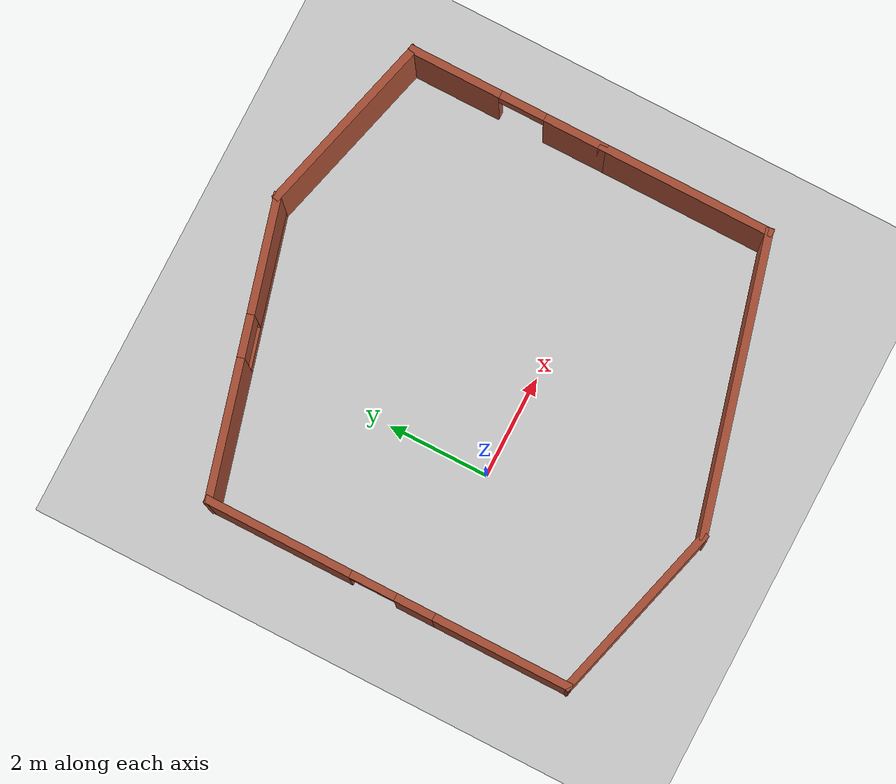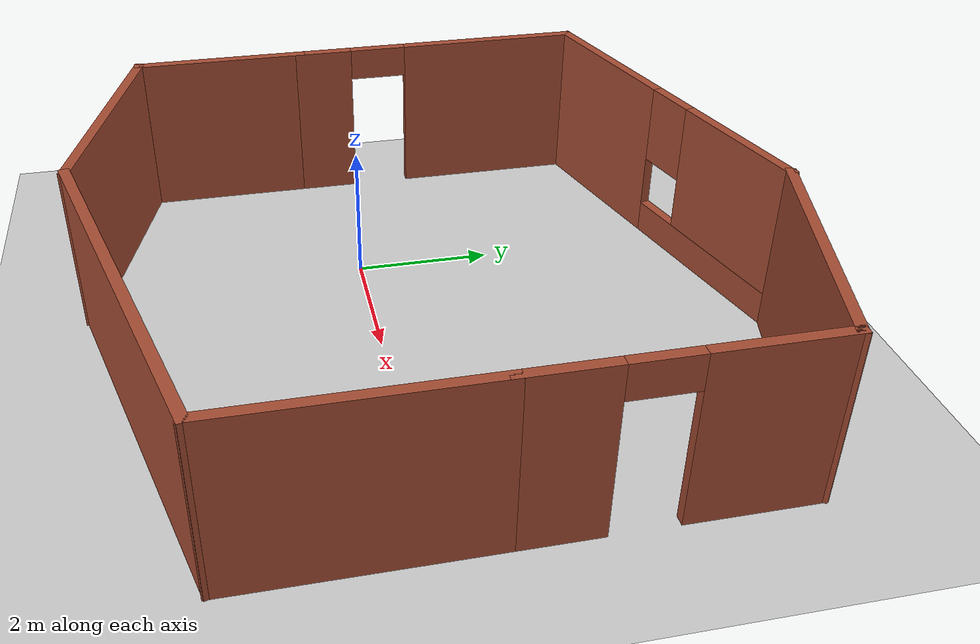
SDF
<sdf version="1.7">
 <world name="default">
  <light name="sun" type="directional">
   <pose>0 0 10 0 -0 0</pose>
   <diffuse>0.8 0.8 0.8 1</diffuse>
   <specular>0.2 0.2 0.2 1</specular>
   <attenuation>
    <range>1000</range>
    <constant>0.9</constant>
    <linear>0.01</linear>
    <quadratic>0.001</quadratic>
   </attenuation>
   <direction>-0.5 0.1 -0.9</direction>
   <spot><inner_angle>0</inner_angle><outer_angle>0</outer_angle><falloff>0</falloff></spot>
  </light>
  <model name="ground_plane">
   <static>1</static>
   <link name="link">
    <collision name="collision">
     <geometry><plane><normal>0 0 1</normal><size>100 100</size></plane></geometry>
     <surface>
      <contact><collide_bitmask>65535</collide_bitmask></contact>
      <friction><ode><mu>100</mu><mu2>50</mu2></ode></friction>
     </surface>
    </collision>
    <visual name="visual">
     <cast_shadows>0</cast_shadows>
     <geometry><plane><normal>0 0 1</normal><size>100 100</size></plane></geometry>
     <material>
      <script><uri>file://media/materials/scripts/gazebo.material</uri><name>Gazebo/Grey</name></script>
     </material>
    </visual>
   </link>
  </model>
  <gravity>0 0 -9.8</gravity>
  <magnetic_field>6e-06 2.3e-05 -4.2e-05</magnetic_field>
  <atmosphere type="adiabatic"/>
  <physics type="ode">
   <max_step_size>0.001</max_step_size>
   <real_time_factor>1</real_time_factor>
   <real_time_update_rate>1000</real_time_update_rate>
  </physics>
  <scene><ambient>0.4 0.4 0.4 1</ambient><background>0.7 0.7 0.7 1</background><shadows>1</shadows></scene>
  <spherical_coordinates>
   <surface_model>EARTH_WGS84</surface_model>
   <latitude_deg>0</latitude_deg>
   <longitude_deg>0</longitude_deg>
   <elevation>0</elevation>
   <heading_deg>0</heading_deg>
  </spherical_coordinates>
  <model name="my_building">
   <pose>1.60595 0.7522 0 0 -0 0</pose>
   <link name="Wall_12">
    <collision name="Wall_12_Collision">
     <geometry><box><size>2.75 0.15 2.5</size></box></geometry>
     <pose>0 0 1.25 0 -0 0</pose>
    </collision>
    <visual name="Wall_12_Visual">
     <pose>0 0 1.25 0 -0 0</pose>
     <geometry><box><size>2.75 0.15 2.5</size></box></geometry>
     <material>
      <script><uri>file://media/materials/scripts/gazebo.material</uri><name>Gazebo/Bricks</name></script>
      <ambient>1 1 1 1</ambient>
     </material>
     <meta><layer>0</layer></meta>
    </visual>
    <pose>-4.44326 -2.55882 0 0 -0 -1.5708</pose>
   </link>
   <link name="Wall_13">
    <collision name="Wall_13_Collision">
     <geometry><box><size>3.75 0.15 2.5</size></box></geometry>
     <pose>0 0 1.25 0 -0 0</pose>
    </collision>
    <visual name="Wall_13_Visual">
     <pose>0 0 1.25 0 -0 0</pose>
     <geometry><box><size>3.75 0.15 2.5</size></box></geometry>
     <material>
      <script><uri>file://media/materials/scripts/gazebo.material</uri><name>Gazebo/Bricks</name></script>
      <ambient>1 1 1 1</ambient>
     </material>
     <meta><layer>0</layer></meta>
    </visual>
    <pose>-2.70459 -4.32469 0 0 -0 -0.261799</pose>
   </link>
   <link name="Wall_14">
    <collision name="Wall_14_Collision">
     <geometry><box><size>5.75 0.15 2.5</size></box></geometry>
     <pose>0 0 1.25 0 -0 0</pose>
    </collision>
    <visual name="Wall_14_Visual">
     <pose>0 0 1.25 0 -0 0</pose>
     <geometry><box><size>5.75 0.15 2.5</size></box></geometry>
     <material>
      <script><uri>file://media/materials/scripts/gazebo.material</uri><name>Gazebo/Bricks</name></script>
      <ambient>1 1 1 1</ambient>
     </material>
     <meta><layer>0</layer></meta>
    </visual>
    <pose>1.73867 -4.06587 0 0 -0 0.261799</pose>
   </link>
   <link name="Wall_15">
    <collision name="Wall_15_Collision">
     <geometry><box><size>3.5 0.15 2.5</size></box></geometry>
     <pose>0 0 1.25 0 -0 0</pose>
    </collision>
    <visual name="Wall_15_Visual">
     <pose>0 0 1.25 0 -0 0</pose>
     <geometry><box><size>3.5 0.15 2.5</size></box></geometry>
     <material>
      <script><uri>file://media/materials/scripts/gazebo.material</uri><name>Gazebo/Bricks</name></script>
      <ambient>1 1 1 1</ambient>
     </material>
     <meta><layer>0</layer></meta>
    </visual>
    <pose>4.44326 -1.66618 0 0 -0 1.5708</pose>
   </link>
   <link name="Wall_19">
    <pose>-4.44326 1.04118 0 0 -0 1.5708</pose>
    <visual name="Wall_19_Visual_0">
     <pose>-1.91484 0 1.25 0 -0 0</pose>
     <geometry><box><size>0.920314 0.15 2.5</size></box></geometry>
     <material>
      <script><uri>file://media/materials/scripts/gazebo.material</uri><name>Gazebo/Bricks</name></script>
      <ambient>1 1 1 1</ambient>
     </material>
     <meta><layer>0</layer></meta>
    </visual>
    <collision name="Wall_19_Collision_0">
     <geometry><box><size>0.920314 0.15 2.5</size></box></geometry>
     <pose>-1.91484 0 1.25 0 -0 0</pose>
    </collision>
    <visual name="Wall_19_Visual_1">
     <pose>0.910157 0 1.25 0 -0 0</pose>
     <geometry><box><size>2.92969 0.15 2.5</size></box></geometry>
     <material>
      <script><uri>file://media/materials/scripts/gazebo.material</uri><name>Gazebo/Bricks</name></script>
      <ambient>1 1 1 1</ambient>
     </material>
     <meta><layer>0</layer></meta>
    </visual>
    <collision name="Wall_19_Collision_1">
     <geometry><box><size>2.92969 0.15 2.5</size></box></geometry>
     <pose>0.910157 0 1.25 0 -0 0</pose>
    </collision>
    <visual name="Wall_19_Visual_2">
     <pose>-1.00469 0 2.25 0 -0 0</pose>
     <geometry><box><size>0.9 0.15 0.5</size></box></geometry>
     <material>
      <script><uri>file://media/materials/scripts/gazebo.material</uri><name>Gazebo/Bricks</name></script>
      <ambient>1 1 1 1</ambient>
     </material>
     <meta><layer>0</layer></meta>
    </visual>
    <collision name="Wall_19_Collision_2">
     <geometry><box><size>0.9 0.15 0.5</size></box></geometry>
     <pose>-1.00469 0 2.25 0 -0 0</pose>
    </collision>
   </link>
   <link name="Wall_20">
    <pose>-1.73867 4.06587 0 0 -0 0.261799</pose>
    <visual name="Wall_20_Visual_0">
     <pose>-1.53156 0 1.25 0 -0 0</pose>
     <geometry><box><size>2.68688 0.15 2.5</size></box></geometry>
     <material>
      <script><uri>file://media/materials/scripts/gazebo.material</uri><name>Gazebo/Bricks</name></script>
      <ambient>1 1 1 1</ambient>
     </material>
     <meta><layer>0</layer></meta>
    </visual>
    <collision name="Wall_20_Collision_0">
     <geometry><box><size>2.68688 0.15 2.5</size></box></geometry>
     <pose>-1.53156 0 1.25 0 -0 0</pose>
    </collision>
    <visual name="Wall_20_Visual_1">
     <pose>1.34344 0 0.25 0 -0 0</pose>
     <geometry><box><size>3.06312 0.15 0.5</size></box></geometry>
     <material>
      <script><uri>file://media/materials/scripts/gazebo.material</uri><name>Gazebo/Bricks</name></script>
      <ambient>1 1 1 1</ambient>
     </material>
     <meta><layer>0</layer></meta>
    </visual>
    <collision name="Wall_20_Collision_1">
     <geometry><box><size>3.06312 0.15 0.5</size></box></geometry>
     <pose>1.34344 0 0.25 0 -0 0</pose>
    </collision>
    <visual name="Wall_20_Visual_2">
     <pose>1.74344 0 1.5 0 -0 0</pose>
     <geometry><box><size>2.26312 0.15 2</size></box></geometry>
     <material>
      <script><uri>file://media/materials/scripts/gazebo.material</uri><name>Gazebo/Bricks</name></script>
      <ambient>1 1 1 1</ambient>
     </material>
     <meta><layer>0</layer></meta>
    </visual>
    <collision name="Wall_20_Collision_2">
     <geometry><box><size>2.26312 0.15 2</size></box></geometry>
     <pose>1.74344 0 1.5 0 -0 0</pose>
    </collision>
    <visual name="Wall_20_Visual_3">
     <pose>0.211878 0 1.9 0 -0 0</pose>
     <geometry><box><size>0.8 0.15 1.2</size></box></geometry>
     <material>
      <script><uri>file://media/materials/scripts/gazebo.material</uri><name>Gazebo/Bricks</name></script>
      <ambient>1 1 1 1</ambient>
     </material>
     <meta><layer>0</layer></meta>
    </visual>
    <collision name="Wall_20_Collision_3">
     <geometry><box><size>0.8 0.15 1.2</size></box></geometry>
     <pose>0.211878 0 1.9 0 -0 0</pose>
    </collision>
   </link>
   <link name="Wall_21">
    <collision name="Wall_21_Collision">
     <geometry><box><size>3.75 0.15 2.5</size></box></geometry>
     <pose>0 0 1.25 0 -0 0</pose>
    </collision>
    <visual name="Wall_21_Visual">
     <pose>0 0 1.25 0 -0 0</pose>
     <geometry><box><size>3.75 0.15 2.5</size></box></geometry>
     <material>
      <script><uri>file://media/materials/scripts/gazebo.material</uri><name>Gazebo/Bricks</name></script>
      <ambient>1 1 1 1</ambient>
     </material>
     <meta><layer>0</layer></meta>
    </visual>
    <pose>2.70459 4.32469 0 0 -0 -0.261799</pose>
   </link>
   <link name="Wall_22">
    <pose>4.44326 1.93382 0 0 -0 -1.5708</pose>
    <visual name="Wall_22_Visual_0">
     <pose>-1.07434 0 1.25 0 -0 0</pose>
     <geometry><box><size>1.85131 0.15 2.5</size></box></geometry>
     <material>
      <script><uri>file://media/materials/scripts/gazebo.material</uri><name>Gazebo/Bricks</name></script>
      <ambient>1 1 1 1</ambient>
     </material>
     <meta><layer>0</layer></meta>
    </visual>
    <collision name="Wall_22_Collision_0">
     <geometry><box><size>1.85131 0.15 2.5</size></box></geometry>
     <pose>-1.07434 0 1.25 0 -0 0</pose>
    </collision>
    <visual name="Wall_22_Visual_1">
     <pose>1.37566 0 1.25 0 -0 0</pose>
     <geometry><box><size>1.24869 0.15 2.5</size></box></geometry>
     <material>
      <script><uri>file://media/materials/scripts/gazebo.material</uri><name>Gazebo/Bricks</name></script>
      <ambient>1 1 1 1</ambient>
     </material>
     <meta><layer>0</layer></meta>
    </visual>
    <collision name="Wall_22_Collision_1">
     <geometry><box><size>1.24869 0.15 2.5</size></box></geometry>
     <pose>1.37566 0 1.25 0 -0 0</pose>
    </collision>
    <visual name="Wall_22_Visual_2">
     <pose>0.301312 0 2.25 0 -0 0</pose>
     <geometry><box><size>0.9 0.15 0.5</size></box></geometry>
     <material>
      <script><uri>file://media/materials/scripts/gazebo.material</uri><name>Gazebo/Bricks</name></script>
      <ambient>1 1 1 1</ambient>
     </material>
     <meta><layer>0</layer></meta>
    </visual>
    <collision name="Wall_22_Collision_2">
     <geometry><box><size>0.9 0.15 0.5</size></box></geometry>
     <pose>0.301312 0 2.25 0 -0 0</pose>
    </collision>
   </link>
   <static>1</static>
  </model>
 </world>
</sdf>
